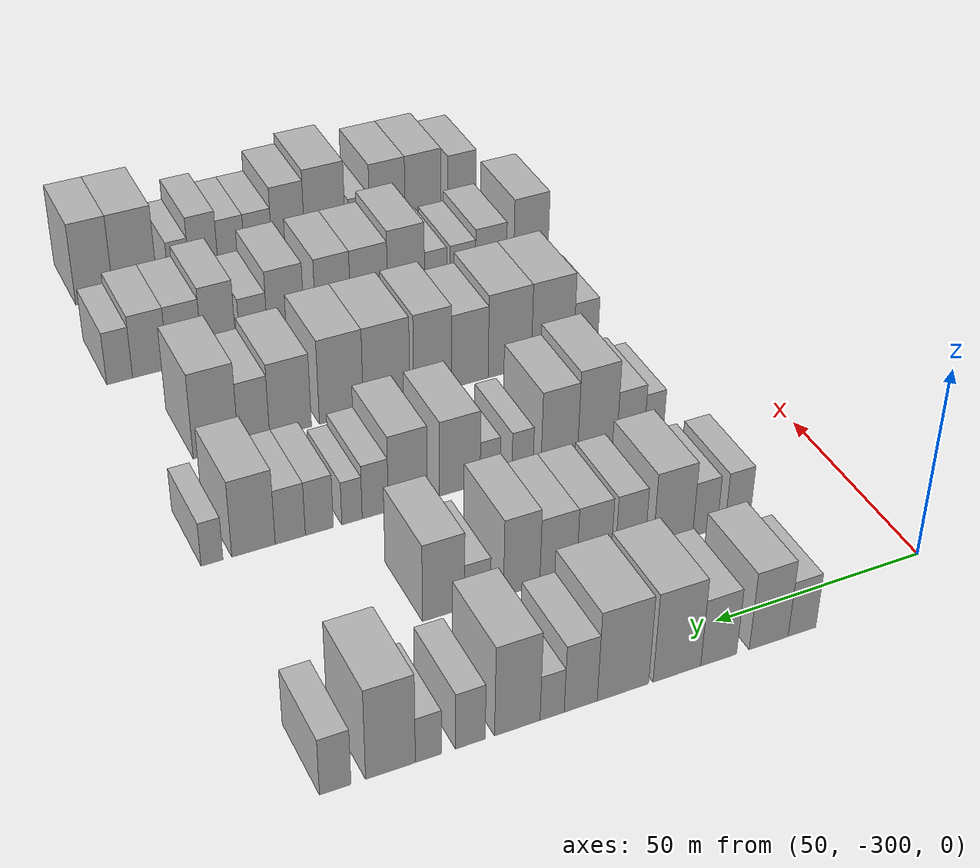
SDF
<sdf version="1.6">
 <world name="default">
  <model name="building_38">
   <static>1</static>
   <pose>50.0000 -264.4770 0 0.000000 0.000000 0.000000</pose>
   <link name="link">
    <pose>0 0 7.50 0 0 0</pose>
    <collision name="collision"><geometry><box><size>20.0000 6.6786 15.0000</size></box></geometry></collision>
    <visual name="visual">
     <cast_shadows>0</cast_shadows>
     <geometry><box><size>20.0000 6.6786 15.0000</size></box></geometry>
     <material>
      <script>
       <uri>model://HANNAS_wall/materials/scripts</uri>
       <uri>model://HANNAS_wall/materials/textures</uri>
       <name>vrc/HANNAS_wall</name>
      </script>
     </material>
    </visual>
   </link>
  </model>
  <model name="building_39">
   <static>1</static>
   <pose>50.0000 -256.5111 0 0.000000 0.000000 0.000000</pose>
   <link name="link">
    <pose>0 0 10.50 0 0 0</pose>
    <collision name="collision"><geometry><box><size>20.0000 9.2534 21.0000</size></box></geometry></collision>
    <visual name="visual">
     <cast_shadows>0</cast_shadows>
     <geometry><box><size>20.0000 9.2534 21.0000</size></box></geometry>
     <material>
      <script>
       <uri>model://HANNAS_wall/materials/scripts</uri>
       <uri>model://HANNAS_wall/materials/textures</uri>
       <name>vrc/HANNAS_wall</name>
      </script>
     </material>
    </visual>
   </link>
  </model>
  <model name="building_40">
   <static>1</static>
   <pose>50.0000 -244.6883 0 0.000000 0.000000 0.000000</pose>
   <link name="link">
    <pose>0 0 9.00 0 0 0</pose>
    <collision name="collision"><geometry><box><size>20.0000 8.3921 18.0000</size></box></geometry></collision>
    <visual name="visual">
     <cast_shadows>0</cast_shadows>
     <geometry><box><size>20.0000 8.3921 18.0000</size></box></geometry>
     <material>
      <script>
       <uri>model://HANNAS_wall/materials/scripts</uri>
       <uri>model://HANNAS_wall/materials/textures</uri>
       <name>vrc/HANNAS_wall</name>
      </script>
     </material>
    </visual>
   </link>
  </model>
  <model name="building_41">
   <static>1</static>
   <pose>50.0000 -234.9987 0 0.000000 0.000000 0.000000</pose>
   <link name="link">
    <pose>0 0 12.00 0 0 0</pose>
    <collision name="collision"><geometry><box><size>20.0000 10.9871 24.0000</size></box></geometry></collision>
    <visual name="visual">
     <cast_shadows>0</cast_shadows>
     <geometry><box><size>20.0000 10.9871 24.0000</size></box></geometry>
     <material>
      <script>
       <uri>model://HANNAS_wall/materials/scripts</uri>
       <uri>model://HANNAS_wall/materials/textures</uri>
       <name>vrc/HANNAS_wall</name>
      </script>
     </material>
    </visual>
   </link>
  </model>
  <model name="building_42">
   <static>1</static>
   <pose>50.0000 -222.6855 0 0.000000 0.000000 0.000000</pose>
   <link name="link">
    <pose>0 0 12.00 0 0 0</pose>
    <collision name="collision"><geometry><box><size>20.0000 11.6394 24.0000</size></box></geometry></collision>
    <visual name="visual">
     <cast_shadows>0</cast_shadows>
     <geometry><box><size>20.0000 11.6394 24.0000</size></box></geometry>
     <material>
      <script>
       <uri>model://HANNAS_wall/materials/scripts</uri>
       <uri>model://HANNAS_wall/materials/textures</uri>
       <name>vrc/HANNAS_wall</name>
      </script>
     </material>
    </visual>
   </link>
  </model>
  <model name="building_43">
   <static>1</static>
   <pose>50.0000 -213.1905 0 0.000000 0.000000 0.000000</pose>
   <link name="link">
    <pose>0 0 9.00 0 0 0</pose>
    <collision name="collision"><geometry><box><size>20.0000 7.3506 18.0000</size></box></geometry></collision>
    <visual name="visual">
     <cast_shadows>0</cast_shadows>
     <geometry><box><size>20.0000 7.3506 18.0000</size></box></geometry>
     <material>
      <script>
       <uri>model://HANNAS_wall/materials/scripts</uri>
       <uri>model://HANNAS_wall/materials/textures</uri>
       <name>vrc/HANNAS_wall</name>
      </script>
     </material>
    </visual>
   </link>
  </model>
  <model name="building_44">
   <static>1</static>
   <pose>50.0000 -206.8471 0 0.000000 0.000000 0.000000</pose>
   <link name="link">
    <pose>0 0 6.00 0 0 0</pose>
    <collision name="collision"><geometry><box><size>20.0000 5.3361 12.0000</size></box></geometry></collision>
    <visual name="visual">
     <cast_shadows>0</cast_shadows>
     <geometry><box><size>20.0000 5.3361 12.0000</size></box></geometry>
     <material>
      <script>
       <uri>model://HANNAS_wall/materials/scripts</uri>
       <uri>model://HANNAS_wall/materials/textures</uri>
       <name>vrc/HANNAS_wall</name>
      </script>
     </material>
    </visual>
   </link>
  </model>
  <model name="building_45">
   <static>1</static>
   <pose>50.0000 -199.2289 0 0.000000 0.000000 0.000000</pose>
   <link name="link">
    <pose>0 0 12.00 0 0 0</pose>
    <collision name="collision"><geometry><box><size>20.0000 9.9003 24.0000</size></box></geometry></collision>
    <visual name="visual">
     <cast_shadows>0</cast_shadows>
     <geometry><box><size>20.0000 9.9003 24.0000</size></box></geometry>
     <material>
      <script>
       <uri>model://HANNAS_wall/materials/scripts</uri>
       <uri>model://HANNAS_wall/materials/textures</uri>
       <name>vrc/HANNAS_wall</name>
      </script>
     </material>
    </visual>
   </link>
  </model>
  <model name="building_46">
   <static>1</static>
   <pose>50.0000 -189.0981 0 0.000000 0.000000 0.000000</pose>
   <link name="link">
    <pose>0 0 7.50 0 0 0</pose>
    <collision name="collision"><geometry><box><size>20.0000 6.3613 15.0000</size></box></geometry></collision>
    <visual name="visual">
     <cast_shadows>0</cast_shadows>
     <geometry><box><size>20.0000 6.3613 15.0000</size></box></geometry>
     <material>
      <script>
       <uri>model://HANNAS_wall/materials/scripts</uri>
       <uri>model://HANNAS_wall/materials/textures</uri>
       <name>vrc/HANNAS_wall</name>
      </script>
     </material>
    </visual>
   </link>
  </model>
  <model name="building_47">
   <static>1</static>
   <pose>50.0000 -180.1679 0 0.000000 0.000000 0.000000</pose>
   <link name="link">
    <pose>0 0 6.00 0 0 0</pose>
    <collision name="collision"><geometry><box><size>20.0000 5.4991 12.0000</size></box></geometry></collision>
    <visual name="visual">
     <cast_shadows>0</cast_shadows>
     <geometry><box><size>20.0000 5.4991 12.0000</size></box></geometry>
     <material>
      <script>
       <uri>model://HANNAS_wall/materials/scripts</uri>
       <uri>model://HANNAS_wall/materials/textures</uri>
       <name>vrc/HANNAS_wall</name>
      </script>
     </material>
    </visual>
   </link>
  </model>
  <model name="building_48">
   <static>1</static>
   <pose>50.0000 -172.2289 0 0.000000 0.000000 0.000000</pose>
   <link name="link">
    <pose>0 0 12.00 0 0 0</pose>
    <collision name="collision"><geometry><box><size>20.0000 10.3790 24.0000</size></box></geometry></collision>
    <visual name="visual">
     <cast_shadows>0</cast_shadows>
     <geometry><box><size>20.0000 10.3790 24.0000</size></box></geometry>
     <material>
      <script>
       <uri>model://HANNAS_wall/materials/scripts</uri>
       <uri>model://HANNAS_wall/materials/textures</uri>
       <name>vrc/HANNAS_wall</name>
      </script>
     </material>
    </visual>
   </link>
  </model>
  <model name="building_49">
   <static>1</static>
   <pose>50.0000 -160.8166 0 0.000000 0.000000 0.000000</pose>
   <link name="link">
    <pose>0 0 7.50 0 0 0</pose>
    <collision name="collision"><geometry><box><size>20.0000 6.4456 15.0000</size></box></geometry></collision>
    <visual name="visual">
     <cast_shadows>0</cast_shadows>
     <geometry><box><size>20.0000 6.4456 15.0000</size></box></geometry>
     <material>
      <script>
       <uri>model://HANNAS_wall/materials/scripts</uri>
       <uri>model://HANNAS_wall/materials/textures</uri>
       <name>vrc/HANNAS_wall</name>
      </script>
     </material>
    </visual>
   </link>
  </model>
  <model name="building_171">
   <static>1</static>
   <pose>85.0000 -269.8474 0 0.000000 0.000000 0.000000</pose>
   <link name="link">
    <pose>0 0 7.50 0 0 0</pose>
    <collision name="collision"><geometry><box><size>20.0000 6.3434 15.0000</size></box></geometry></collision>
    <visual name="visual">
     <cast_shadows>0</cast_shadows>
     <geometry><box><size>20.0000 6.3434 15.0000</size></box></geometry>
     <material>
      <script>
       <uri>model://HANNAS_wall/materials/scripts</uri>
       <uri>model://HANNAS_wall/materials/textures</uri>
       <name>vrc/HANNAS_wall</name>
      </script>
     </material>
    </visual>
   </link>
  </model>
  <model name="building_172">
   <static>1</static>
   <pose>85.0000 -261.5961 0 0.000000 0.000000 0.000000</pose>
   <link name="link">
    <pose>0 0 7.50 0 0 0</pose>
    <collision name="collision"><geometry><box><size>20.0000 6.1592 15.0000</size></box></geometry></collision>
    <visual name="visual">
     <cast_shadows>0</cast_shadows>
     <geometry><box><size>20.0000 6.1592 15.0000</size></box></geometry>
     <material>
      <script>
       <uri>model://HANNAS_wall/materials/scripts</uri>
       <uri>model://HANNAS_wall/materials/textures</uri>
       <name>vrc/HANNAS_wall</name>
      </script>
     </material>
    </visual>
   </link>
  </model>
  <model name="building_173">
   <static>1</static>
   <pose>85.0000 -253.6082 0 0.000000 0.000000 0.000000</pose>
   <link name="link">
    <pose>0 0 10.50 0 0 0</pose>
    <collision name="collision"><geometry><box><size>20.0000 9.8166 21.0000</size></box></geometry></collision>
    <visual name="visual">
     <cast_shadows>0</cast_shadows>
     <geometry><box><size>20.0000 9.8166 21.0000</size></box></geometry>
     <material>
      <script>
       <uri>model://HANNAS_wall/materials/scripts</uri>
       <uri>model://HANNAS_wall/materials/textures</uri>
       <name>vrc/HANNAS_wall</name>
      </script>
     </material>
    </visual>
   </link>
  </model>
  <model name="building_174">
   <static>1</static>
   <pose>85.0000 -243.0721 0 0.000000 0.000000 0.000000</pose>
   <link name="link">
    <pose>0 0 9.00 0 0 0</pose>
    <collision name="collision"><geometry><box><size>20.0000 7.2554 18.0000</size></box></geometry></collision>
    <visual name="visual">
     <cast_shadows>0</cast_shadows>
     <geometry><box><size>20.0000 7.2554 18.0000</size></box></geometry>
     <material>
      <script>
       <uri>model://HANNAS_wall/materials/scripts</uri>
       <uri>model://HANNAS_wall/materials/textures</uri>
       <name>vrc/HANNAS_wall</name>
      </script>
     </material>
    </visual>
   </link>
  </model>
  <model name="building_175">
   <static>1</static>
   <pose>85.0000 -234.3224 0 0.000000 0.000000 0.000000</pose>
   <link name="link">
    <pose>0 0 9.00 0 0 0</pose>
    <collision name="collision"><geometry><box><size>20.0000 8.2440 18.0000</size></box></geometry></collision>
    <visual name="visual">
     <cast_shadows>0</cast_shadows>
     <geometry><box><size>20.0000 8.2440 18.0000</size></box></geometry>
     <material>
      <script>
       <uri>model://HANNAS_wall/materials/scripts</uri>
       <uri>model://HANNAS_wall/materials/textures</uri>
       <name>vrc/HANNAS_wall</name>
      </script>
     </material>
    </visual>
   </link>
  </model>
  <model name="building_176">
   <static>1</static>
   <pose>85.0000 -225.8121 0 0.000000 0.000000 0.000000</pose>
   <link name="link">
    <pose>0 0 9.00 0 0 0</pose>
    <collision name="collision"><geometry><box><size>20.0000 8.7767 18.0000</size></box></geometry></collision>
    <visual name="visual">
     <cast_shadows>0</cast_shadows>
     <geometry><box><size>20.0000 8.7767 18.0000</size></box></geometry>
     <material>
      <script>
       <uri>model://HANNAS_wall/materials/scripts</uri>
       <uri>model://HANNAS_wall/materials/textures</uri>
       <name>vrc/HANNAS_wall</name>
      </script>
     </material>
    </visual>
   </link>
  </model>
  <model name="building_177">
   <static>1</static>
   <pose>85.0000 -217.1564 0 0.000000 0.000000 0.000000</pose>
   <link name="link">
    <pose>0 0 10.50 0 0 0</pose>
    <collision name="collision"><geometry><box><size>20.0000 8.5347 21.0000</size></box></geometry></collision>
    <visual name="visual">
     <cast_shadows>0</cast_shadows>
     <geometry><box><size>20.0000 8.5347 21.0000</size></box></geometry>
     <material>
      <script>
       <uri>model://HANNAS_wall/materials/scripts</uri>
       <uri>model://HANNAS_wall/materials/textures</uri>
       <name>vrc/HANNAS_wall</name>
      </script>
     </material>
    </visual>
   </link>
  </model>
  <model name="building_178">
   <static>1</static>
   <pose>85.0000 -206.8909 0 0.000000 0.000000 0.000000</pose>
   <link name="link">
    <pose>0 0 6.00 0 0 0</pose>
    <collision name="collision"><geometry><box><size>20.0000 5.9962 12.0000</size></box></geometry></collision>
    <visual name="visual">
     <cast_shadows>0</cast_shadows>
     <geometry><box><size>20.0000 5.9962 12.0000</size></box></geometry>
     <material>
      <script>
       <uri>model://HANNAS_wall/materials/scripts</uri>
       <uri>model://HANNAS_wall/materials/textures</uri>
       <name>vrc/HANNAS_wall</name>
      </script>
     </material>
    </visual>
   </link>
  </model>
  <model name="building_179">
   <static>1</static>
   <pose>85.0000 -199.1006 0 0.000000 0.000000 0.000000</pose>
   <link name="link">
    <pose>0 0 10.50 0 0 0</pose>
    <collision name="collision"><geometry><box><size>20.0000 9.5846 21.0000</size></box></geometry></collision>
    <visual name="visual">
     <cast_shadows>0</cast_shadows>
     <geometry><box><size>20.0000 9.5846 21.0000</size></box></geometry>
     <material>
      <script>
       <uri>model://HANNAS_wall/materials/scripts</uri>
       <uri>model://HANNAS_wall/materials/textures</uri>
       <name>vrc/HANNAS_wall</name>
      </script>
     </material>
    </visual>
   </link>
  </model>
  <model name="building_300">
   <static>1</static>
   <pose>120.0000 -268.2463 0 0.000000 0.000000 0.000000</pose>
   <link name="link">
    <pose>0 0 6.00 0 0 0</pose>
    <collision name="collision"><geometry><box><size>20.0000 5.0857 12.0000</size></box></geometry></collision>
    <visual name="visual">
     <cast_shadows>0</cast_shadows>
     <geometry><box><size>20.0000 5.0857 12.0000</size></box></geometry>
     <material>
      <script>
       <uri>model://HANNAS_wall/materials/scripts</uri>
       <uri>model://HANNAS_wall/materials/textures</uri>
       <name>vrc/HANNAS_wall</name>
      </script>
     </material>
    </visual>
   </link>
  </model>
  <model name="building_301">
   <static>1</static>
   <pose>120.0000 -262.1021 0 0.000000 0.000000 0.000000</pose>
   <link name="link">
    <pose>0 0 7.50 0 0 0</pose>
    <collision name="collision"><geometry><box><size>20.0000 7.2027 15.0000</size></box></geometry></collision>
    <visual name="visual">
     <cast_shadows>0</cast_shadows>
     <geometry><box><size>20.0000 7.2027 15.0000</size></box></geometry>
     <material>
      <script>
       <uri>model://HANNAS_wall/materials/scripts</uri>
       <uri>model://HANNAS_wall/materials/textures</uri>
       <name>vrc/HANNAS_wall</name>
      </script>
     </material>
    </visual>
   </link>
  </model>
  <model name="building_302">
   <static>1</static>
   <pose>120.0000 -253.4318 0 0.000000 0.000000 0.000000</pose>
   <link name="link">
    <pose>0 0 12.00 0 0 0</pose>
    <collision name="collision"><geometry><box><size>20.0000 10.1380 24.0000</size></box></geometry></collision>
    <visual name="visual">
     <cast_shadows>0</cast_shadows>
     <geometry><box><size>20.0000 10.1380 24.0000</size></box></geometry>
     <material>
      <script>
       <uri>model://HANNAS_wall/materials/scripts</uri>
       <uri>model://HANNAS_wall/materials/textures</uri>
       <name>vrc/HANNAS_wall</name>
      </script>
     </material>
    </visual>
   </link>
  </model>
  <model name="building_303">
   <static>1</static>
   <pose>120.0000 -243.7081 0 0.000000 0.000000 0.000000</pose>
   <link name="link">
    <pose>0 0 10.50 0 0 0</pose>
    <collision name="collision"><geometry><box><size>20.0000 9.3093 21.0000</size></box></geometry></collision>
    <visual name="visual">
     <cast_shadows>0</cast_shadows>
     <geometry><box><size>20.0000 9.3093 21.0000</size></box></geometry>
     <material>
      <script>
       <uri>model://HANNAS_wall/materials/scripts</uri>
       <uri>model://HANNAS_wall/materials/textures</uri>
       <name>vrc/HANNAS_wall</name>
      </script>
     </material>
    </visual>
   </link>
  </model>
  <model name="building_304">
   <static>1</static>
   <pose>120.0000 -234.3869 0 0.000000 0.000000 0.000000</pose>
   <link name="link">
    <pose>0 0 6.00 0 0 0</pose>
    <collision name="collision"><geometry><box><size>20.0000 5.3332 12.0000</size></box></geometry></collision>
    <visual name="visual">
     <cast_shadows>0</cast_shadows>
     <geometry><box><size>20.0000 5.3332 12.0000</size></box></geometry>
     <material>
      <script>
       <uri>model://HANNAS_wall/materials/scripts</uri>
       <uri>model://HANNAS_wall/materials/textures</uri>
       <name>vrc/HANNAS_wall</name>
      </script>
     </material>
    </visual>
   </link>
  </model>
  <model name="building_305">
   <static>1</static>
   <pose>120.0000 -226.2571 0 0.000000 0.000000 0.000000</pose>
   <link name="link">
    <pose>0 0 6.00 0 0 0</pose>
    <collision name="collision"><geometry><box><size>20.0000 4.9263 12.0000</size></box></geometry></collision>
    <visual name="visual">
     <cast_shadows>0</cast_shadows>
     <geometry><box><size>20.0000 4.9263 12.0000</size></box></geometry>
     <material>
      <script>
       <uri>model://HANNAS_wall/materials/scripts</uri>
       <uri>model://HANNAS_wall/materials/textures</uri>
       <name>vrc/HANNAS_wall</name>
      </script>
     </material>
    </visual>
   </link>
  </model>
  <model name="building_306">
   <static>1</static>
   <pose>120.0000 -218.8204 0 0.000000 0.000000 0.000000</pose>
   <link name="link">
    <pose>0 0 10.50 0 0 0</pose>
    <collision name="collision"><geometry><box><size>20.0000 9.9471 21.0000</size></box></geometry></collision>
    <visual name="visual">
     <cast_shadows>0</cast_shadows>
     <geometry><box><size>20.0000 9.9471 21.0000</size></box></geometry>
     <material>
      <script>
       <uri>model://HANNAS_wall/materials/scripts</uri>
       <uri>model://HANNAS_wall/materials/textures</uri>
       <name>vrc/HANNAS_wall</name>
      </script>
     </material>
    </visual>
   </link>
  </model>
  <model name="building_307">
   <static>1</static>
   <pose>120.0000 -206.1508 0 0.000000 0.000000 0.000000</pose>
   <link name="link">
    <pose>0 0 10.50 0 0 0</pose>
    <collision name="collision"><geometry><box><size>20.0000 9.3922 21.0000</size></box></geometry></collision>
    <visual name="visual">
     <cast_shadows>0</cast_shadows>
     <geometry><box><size>20.0000 9.3922 21.0000</size></box></geometry>
     <material>
      <script>
       <uri>model://HANNAS_wall/materials/scripts</uri>
       <uri>model://HANNAS_wall/materials/textures</uri>
       <name>vrc/HANNAS_wall</name>
      </script>
     </material>
    </visual>
   </link>
  </model>
  <model name="building_308">
   <static>1</static>
   <pose>120.0000 -198.3189 0 0.000000 0.000000 0.000000</pose>
   <link name="link">
    <pose>0 0 7.50 0 0 0</pose>
    <collision name="collision"><geometry><box><size>20.0000 6.2715 15.0000</size></box></geometry></collision>
    <visual name="visual">
     <cast_shadows>0</cast_shadows>
     <geometry><box><size>20.0000 6.2715 15.0000</size></box></geometry>
     <material>
      <script>
       <uri>model://HANNAS_wall/materials/scripts</uri>
       <uri>model://HANNAS_wall/materials/textures</uri>
       <name>vrc/HANNAS_wall</name>
      </script>
     </material>
    </visual>
   </link>
  </model>
  <model name="building_309">
   <static>1</static>
   <pose>120.0000 -192.7763 0 0.000000 0.000000 0.000000</pose>
   <link name="link">
    <pose>0 0 6.00 0 0 0</pose>
    <collision name="collision"><geometry><box><size>20.0000 4.8138 12.0000</size></box></geometry></collision>
    <visual name="visual">
     <cast_shadows>0</cast_shadows>
     <geometry><box><size>20.0000 4.8138 12.0000</size></box></geometry>
     <material>
      <script>
       <uri>model://HANNAS_wall/materials/scripts</uri>
       <uri>model://HANNAS_wall/materials/textures</uri>
       <name>vrc/HANNAS_wall</name>
      </script>
     </material>
    </visual>
   </link>
  </model>
  <model name="building_310">
   <static>1</static>
   <pose>120.0000 -185.0852 0 0.000000 0.000000 0.000000</pose>
   <link name="link">
    <pose>0 0 7.50 0 0 0</pose>
    <collision name="collision"><geometry><box><size>20.0000 6.5684 15.0000</size></box></geometry></collision>
    <visual name="visual">
     <cast_shadows>0</cast_shadows>
     <geometry><box><size>20.0000 6.5684 15.0000</size></box></geometry>
     <material>
      <script>
       <uri>model://HANNAS_wall/materials/scripts</uri>
       <uri>model://HANNAS_wall/materials/textures</uri>
       <name>vrc/HANNAS_wall</name>
      </script>
     </material>
    </visual>
   </link>
  </model>
  <model name="building_311">
   <static>1</static>
   <pose>120.0000 -178.3073 0 0.000000 0.000000 0.000000</pose>
   <link name="link">
    <pose>0 0 7.50 0 0 0</pose>
    <collision name="collision"><geometry><box><size>20.0000 6.9875 15.0000</size></box></geometry></collision>
    <visual name="visual">
     <cast_shadows>0</cast_shadows>
     <geometry><box><size>20.0000 6.9875 15.0000</size></box></geometry>
     <material>
      <script>
       <uri>model://HANNAS_wall/materials/scripts</uri>
       <uri>model://HANNAS_wall/materials/textures</uri>
       <name>vrc/HANNAS_wall</name>
      </script>
     </material>
    </visual>
   </link>
  </model>
  <model name="building_312">
   <static>1</static>
   <pose>120.0000 -169.8293 0 0.000000 0.000000 0.000000</pose>
   <link name="link">
    <pose>0 0 10.50 0 0 0</pose>
    <collision name="collision"><geometry><box><size>20.0000 9.9685 21.0000</size></box></geometry></collision>
    <visual name="visual">
     <cast_shadows>0</cast_shadows>
     <geometry><box><size>20.0000 9.9685 21.0000</size></box></geometry>
     <material>
      <script>
       <uri>model://HANNAS_wall/materials/scripts</uri>
       <uri>model://HANNAS_wall/materials/textures</uri>
       <name>vrc/HANNAS_wall</name>
      </script>
     </material>
    </visual>
   </link>
  </model>
  <model name="building_313">
   <static>1</static>
   <pose>120.0000 -160.3650 0 0.000000 0.000000 0.000000</pose>
   <link name="link">
    <pose>0 0 6.00 0 0 0</pose>
    <collision name="collision"><geometry><box><size>20.0000 4.9602 12.0000</size></box></geometry></collision>
    <visual name="visual">
     <cast_shadows>0</cast_shadows>
     <geometry><box><size>20.0000 4.9602 12.0000</size></box></geometry>
     <material>
      <script>
       <uri>model://HANNAS_wall/materials/scripts</uri>
       <uri>model://HANNAS_wall/materials/textures</uri>
       <name>vrc/HANNAS_wall</name>
      </script>
     </material>
    </visual>
   </link>
  </model>
  <model name="building_432">
   <static>1</static>
   <pose>155.0000 -268.5036 0 0.000000 0.000000 0.000000</pose>
   <link name="link">
    <pose>0 0 7.50 0 0 0</pose>
    <collision name="collision"><geometry><box><size>20.0000 6.5609 15.0000</size></box></geometry></collision>
    <visual name="visual">
     <cast_shadows>0</cast_shadows>
     <geometry><box><size>20.0000 6.5609 15.0000</size></box></geometry>
     <material>
      <script>
       <uri>model://HANNAS_wall/materials/scripts</uri>
       <uri>model://HANNAS_wall/materials/textures</uri>
       <name>vrc/HANNAS_wall</name>
      </script>
     </material>
    </visual>
   </link>
  </model>
  <model name="building_433">
   <static>1</static>
   <pose>155.0000 -259.4865 0 0.000000 0.000000 0.000000</pose>
   <link name="link">
    <pose>0 0 12.00 0 0 0</pose>
    <collision name="collision"><geometry><box><size>20.0000 11.4734 24.0000</size></box></geometry></collision>
    <visual name="visual">
     <cast_shadows>0</cast_shadows>
     <geometry><box><size>20.0000 11.4734 24.0000</size></box></geometry>
     <material>
      <script>
       <uri>model://HANNAS_wall/materials/scripts</uri>
       <uri>model://HANNAS_wall/materials/textures</uri>
       <name>vrc/HANNAS_wall</name>
      </script>
     </material>
    </visual>
   </link>
  </model>
  <model name="building_434">
   <static>1</static>
   <pose>155.0000 -247.9953 0 0.000000 0.000000 0.000000</pose>
   <link name="link">
    <pose>0 0 12.00 0 0 0</pose>
    <collision name="collision"><geometry><box><size>20.0000 11.5090 24.0000</size></box></geometry></collision>
    <visual name="visual">
     <cast_shadows>0</cast_shadows>
     <geometry><box><size>20.0000 11.5090 24.0000</size></box></geometry>
     <material>
      <script>
       <uri>model://HANNAS_wall/materials/scripts</uri>
       <uri>model://HANNAS_wall/materials/textures</uri>
       <name>vrc/HANNAS_wall</name>
      </script>
     </material>
    </visual>
   </link>
  </model>
  <model name="building_435">
   <static>1</static>
   <pose>155.0000 -237.4347 0 0.000000 0.000000 0.000000</pose>
   <link name="link">
    <pose>0 0 10.50 0 0 0</pose>
    <collision name="collision"><geometry><box><size>20.0000 9.6121 21.0000</size></box></geometry></collision>
    <visual name="visual">
     <cast_shadows>0</cast_shadows>
     <geometry><box><size>20.0000 9.6121 21.0000</size></box></geometry>
     <material>
      <script>
       <uri>model://HANNAS_wall/materials/scripts</uri>
       <uri>model://HANNAS_wall/materials/textures</uri>
       <name>vrc/HANNAS_wall</name>
      </script>
     </material>
    </visual>
   </link>
  </model>
  <model name="building_436">
   <static>1</static>
   <pose>155.0000 -227.7088 0 0.000000 0.000000 0.000000</pose>
   <link name="link">
    <pose>0 0 12.00 0 0 0</pose>
    <collision name="collision"><geometry><box><size>20.0000 9.8396 24.0000</size></box></geometry></collision>
    <visual name="visual">
     <cast_shadows>0</cast_shadows>
     <geometry><box><size>20.0000 9.8396 24.0000</size></box></geometry>
     <material>
      <script>
       <uri>model://HANNAS_wall/materials/scripts</uri>
       <uri>model://HANNAS_wall/materials/textures</uri>
       <name>vrc/HANNAS_wall</name>
      </script>
     </material>
    </visual>
   </link>
  </model>
  <model name="building_437">
   <static>1</static>
   <pose>155.0000 -215.8614 0 0.000000 0.000000 0.000000</pose>
   <link name="link">
    <pose>0 0 12.00 0 0 0</pose>
    <collision name="collision"><geometry><box><size>20.0000 11.8553 24.0000</size></box></geometry></collision>
    <visual name="visual">
     <cast_shadows>0</cast_shadows>
     <geometry><box><size>20.0000 11.8553 24.0000</size></box></geometry>
     <material>
      <script>
       <uri>model://HANNAS_wall/materials/scripts</uri>
       <uri>model://HANNAS_wall/materials/textures</uri>
       <name>vrc/HANNAS_wall</name>
      </script>
     </material>
    </visual>
   </link>
  </model>
  <model name="building_438">
   <static>1</static>
   <pose>155.0000 -204.3925 0 0.000000 0.000000 0.000000</pose>
   <link name="link">
    <pose>0 0 12.00 0 0 0</pose>
    <collision name="collision"><geometry><box><size>20.0000 11.0824 24.0000</size></box></geometry></collision>
    <visual name="visual">
     <cast_shadows>0</cast_shadows>
     <geometry><box><size>20.0000 11.0824 24.0000</size></box></geometry>
     <material>
      <script>
       <uri>model://HANNAS_wall/materials/scripts</uri>
       <uri>model://HANNAS_wall/materials/textures</uri>
       <name>vrc/HANNAS_wall</name>
      </script>
     </material>
    </visual>
   </link>
  </model>
  <model name="building_439">
   <static>1</static>
   <pose>155.0000 -191.6868 0 0.000000 0.000000 0.000000</pose>
   <link name="link">
    <pose>0 0 10.50 0 0 0</pose>
    <collision name="collision"><geometry><box><size>20.0000 10.3290 21.0000</size></box></geometry></collision>
    <visual name="visual">
     <cast_shadows>0</cast_shadows>
     <geometry><box><size>20.0000 10.3290 21.0000</size></box></geometry>
     <material>
      <script>
       <uri>model://HANNAS_wall/materials/scripts</uri>
       <uri>model://HANNAS_wall/materials/textures</uri>
       <name>vrc/HANNAS_wall</name>
      </script>
     </material>
    </visual>
   </link>
  </model>
  <model name="building_440">
   <static>1</static>
   <pose>155.0000 -182.7000 0 0.000000 0.000000 0.000000</pose>
   <link name="link">
    <pose>0 0 9.00 0 0 0</pose>
    <collision name="collision"><geometry><box><size>20.0000 7.6446 18.0000</size></box></geometry></collision>
    <visual name="visual">
     <cast_shadows>0</cast_shadows>
     <geometry><box><size>20.0000 7.6446 18.0000</size></box></geometry>
     <material>
      <script>
       <uri>model://HANNAS_wall/materials/scripts</uri>
       <uri>model://HANNAS_wall/materials/textures</uri>
       <name>vrc/HANNAS_wall</name>
      </script>
     </material>
    </visual>
   </link>
  </model>
  <model name="building_441">
   <static>1</static>
   <pose>155.0000 -173.4201 0 0.000000 0.000000 0.000000</pose>
   <link name="link">
    <pose>0 0 12.00 0 0 0</pose>
    <collision name="collision"><geometry><box><size>20.0000 10.9152 24.0000</size></box></geometry></collision>
    <visual name="visual">
     <cast_shadows>0</cast_shadows>
     <geometry><box><size>20.0000 10.9152 24.0000</size></box></geometry>
     <material>
      <script>
       <uri>model://HANNAS_wall/materials/scripts</uri>
       <uri>model://HANNAS_wall/materials/textures</uri>
       <name>vrc/HANNAS_wall</name>
      </script>
     </material>
    </visual>
   </link>
  </model>
  <model name="building_561">
   <static>1</static>
   <pose>190.0000 -270.6740 0 0.000000 0.000000 0.000000</pose>
   <link name="link">
    <pose>0 0 12.00 0 0 0</pose>
    <collision name="collision"><geometry><box><size>20.0000 9.7793 24.0000</size></box></geometry></collision>
    <visual name="visual">
     <cast_shadows>0</cast_shadows>
     <geometry><box><size>20.0000 9.7793 24.0000</size></box></geometry>
     <material>
      <script>
       <uri>model://HANNAS_wall/materials/scripts</uri>
       <uri>model://HANNAS_wall/materials/textures</uri>
       <name>vrc/HANNAS_wall</name>
      </script>
     </material>
    </visual>
   </link>
  </model>
  <model name="building_562">
   <static>1</static>
   <pose>190.0000 -259.4428 0 0.000000 0.000000 0.000000</pose>
   <link name="link">
    <pose>0 0 9.00 0 0 0</pose>
    <collision name="collision"><geometry><box><size>20.0000 8.6832 18.0000</size></box></geometry></collision>
    <visual name="visual">
     <cast_shadows>0</cast_shadows>
     <geometry><box><size>20.0000 8.6832 18.0000</size></box></geometry>
     <material>
      <script>
       <uri>model://HANNAS_wall/materials/scripts</uri>
       <uri>model://HANNAS_wall/materials/textures</uri>
       <name>vrc/HANNAS_wall</name>
      </script>
     </material>
    </visual>
   </link>
  </model>
  <model name="building_563">
   <static>1</static>
   <pose>190.0000 -251.6100 0 0.000000 0.000000 0.000000</pose>
   <link name="link">
    <pose>0 0 7.50 0 0 0</pose>
    <collision name="collision"><geometry><box><size>20.0000 6.9825 15.0000</size></box></geometry></collision>
    <visual name="visual">
     <cast_shadows>0</cast_shadows>
     <geometry><box><size>20.0000 6.9825 15.0000</size></box></geometry>
     <material>
      <script>
       <uri>model://HANNAS_wall/materials/scripts</uri>
       <uri>model://HANNAS_wall/materials/textures</uri>
       <name>vrc/HANNAS_wall</name>
      </script>
     </material>
    </visual>
   </link>
  </model>
  <model name="building_564">
   <static>1</static>
   <pose>190.0000 -244.0811 0 0.000000 0.000000 0.000000</pose>
   <link name="link">
    <pose>0 0 7.50 0 0 0</pose>
    <collision name="collision"><geometry><box><size>20.0000 6.0752 15.0000</size></box></geometry></collision>
    <visual name="visual">
     <cast_shadows>0</cast_shadows>
     <geometry><box><size>20.0000 6.0752 15.0000</size></box></geometry>
     <material>
      <script>
       <uri>model://HANNAS_wall/materials/scripts</uri>
       <uri>model://HANNAS_wall/materials/textures</uri>
       <name>vrc/HANNAS_wall</name>
      </script>
     </material>
    </visual>
   </link>
  </model>
  <model name="building_565">
   <static>1</static>
   <pose>190.0000 -236.0250 0 0.000000 0.000000 0.000000</pose>
   <link name="link">
    <pose>0 0 12.00 0 0 0</pose>
    <collision name="collision"><geometry><box><size>20.0000 10.0370 24.0000</size></box></geometry></collision>
    <visual name="visual">
     <cast_shadows>0</cast_shadows>
     <geometry><box><size>20.0000 10.0370 24.0000</size></box></geometry>
     <material>
      <script>
       <uri>model://HANNAS_wall/materials/scripts</uri>
       <uri>model://HANNAS_wall/materials/textures</uri>
       <name>vrc/HANNAS_wall</name>
      </script>
     </material>
    </visual>
   </link>
  </model>
  <model name="building_566">
   <static>1</static>
   <pose>190.0000 -225.9963 0 0.000000 0.000000 0.000000</pose>
   <link name="link">
    <pose>0 0 10.50 0 0 0</pose>
    <collision name="collision"><geometry><box><size>20.0000 10.0204 21.0000</size></box></geometry></collision>
    <visual name="visual">
     <cast_shadows>0</cast_shadows>
     <geometry><box><size>20.0000 10.0204 21.0000</size></box></geometry>
     <material>
      <script>
       <uri>model://HANNAS_wall/materials/scripts</uri>
       <uri>model://HANNAS_wall/materials/textures</uri>
       <name>vrc/HANNAS_wall</name>
      </script>
     </material>
    </visual>
   </link>
  </model>
  <model name="building_567">
   <static>1</static>
   <pose>190.0000 -216.3388 0 0.000000 0.000000 0.000000</pose>
   <link name="link">
    <pose>0 0 10.50 0 0 0</pose>
    <collision name="collision"><geometry><box><size>20.0000 9.2947 21.0000</size></box></geometry></collision>
    <visual name="visual">
     <cast_shadows>0</cast_shadows>
     <geometry><box><size>20.0000 9.2947 21.0000</size></box></geometry>
     <material>
      <script>
       <uri>model://HANNAS_wall/materials/scripts</uri>
       <uri>model://HANNAS_wall/materials/textures</uri>
       <name>vrc/HANNAS_wall</name>
      </script>
     </material>
    </visual>
   </link>
  </model>
  <model name="building_568">
   <static>1</static>
   <pose>190.0000 -203.8784 0 0.000000 0.000000 0.000000</pose>
   <link name="link">
    <pose>0 0 10.50 0 0 0</pose>
    <collision name="collision"><geometry><box><size>20.0000 9.6261 21.0000</size></box></geometry></collision>
    <visual name="visual">
     <cast_shadows>0</cast_shadows>
     <geometry><box><size>20.0000 9.6261 21.0000</size></box></geometry>
     <material>
      <script>
       <uri>model://HANNAS_wall/materials/scripts</uri>
       <uri>model://HANNAS_wall/materials/textures</uri>
       <name>vrc/HANNAS_wall</name>
      </script>
     </material>
    </visual>
   </link>
  </model>
  <model name="building_569">
   <static>1</static>
   <pose>190.0000 -195.4571 0 0.000000 0.000000 0.000000</pose>
   <link name="link">
    <pose>0 0 7.50 0 0 0</pose>
    <collision name="collision"><geometry><box><size>20.0000 7.2165 15.0000</size></box></geometry></collision>
    <visual name="visual">
     <cast_shadows>0</cast_shadows>
     <geometry><box><size>20.0000 7.2165 15.0000</size></box></geometry>
     <material>
      <script>
       <uri>model://HANNAS_wall/materials/scripts</uri>
       <uri>model://HANNAS_wall/materials/textures</uri>
       <name>vrc/HANNAS_wall</name>
      </script>
     </material>
    </visual>
   </link>
  </model>
  <model name="building_570">
   <static>1</static>
   <pose>190.0000 -186.4828 0 0.000000 0.000000 0.000000</pose>
   <link name="link">
    <pose>0 0 10.50 0 0 0</pose>
    <collision name="collision"><geometry><box><size>20.0000 8.7321 21.0000</size></box></geometry></collision>
    <visual name="visual">
     <cast_shadows>0</cast_shadows>
     <geometry><box><size>20.0000 8.7321 21.0000</size></box></geometry>
     <material>
      <script>
       <uri>model://HANNAS_wall/materials/scripts</uri>
       <uri>model://HANNAS_wall/materials/textures</uri>
       <name>vrc/HANNAS_wall</name>
      </script>
     </material>
    </visual>
   </link>
  </model>
  <model name="building_571">
   <static>1</static>
   <pose>190.0000 -177.7274 0 0.000000 0.000000 0.000000</pose>
   <link name="link">
    <pose>0 0 9.00 0 0 0</pose>
    <collision name="collision"><geometry><box><size>20.0000 8.7788 18.0000</size></box></geometry></collision>
    <visual name="visual">
     <cast_shadows>0</cast_shadows>
     <geometry><box><size>20.0000 8.7788 18.0000</size></box></geometry>
     <material>
      <script>
       <uri>model://HANNAS_wall/materials/scripts</uri>
       <uri>model://HANNAS_wall/materials/textures</uri>
       <name>vrc/HANNAS_wall</name>
      </script>
     </material>
    </visual>
   </link>
  </model>
  <model name="building_572">
   <static>1</static>
   <pose>190.0000 -168.9260 0 0.000000 0.000000 0.000000</pose>
   <link name="link">
    <pose>0 0 9.00 0 0 0</pose>
    <collision name="collision"><geometry><box><size>20.0000 8.8239 18.0000</size></box></geometry></collision>
    <visual name="visual">
     <cast_shadows>0</cast_shadows>
     <geometry><box><size>20.0000 8.8239 18.0000</size></box></geometry>
     <material>
      <script>
       <uri>model://HANNAS_wall/materials/scripts</uri>
       <uri>model://HANNAS_wall/materials/textures</uri>
       <name>vrc/HANNAS_wall</name>
      </script>
     </material>
    </visual>
   </link>
  </model>
  <model name="building_573">
   <static>1</static>
   <pose>190.0000 -161.2932 0 0.000000 0.000000 0.000000</pose>
   <link name="link">
    <pose>0 0 7.50 0 0 0</pose>
    <collision name="collision"><geometry><box><size>20.0000 6.4417 15.0000</size></box></geometry></collision>
    <visual name="visual">
     <cast_shadows>0</cast_shadows>
     <geometry><box><size>20.0000 6.4417 15.0000</size></box></geometry>
     <material>
      <script>
       <uri>model://HANNAS_wall/materials/scripts</uri>
       <uri>model://HANNAS_wall/materials/textures</uri>
       <name>vrc/HANNAS_wall</name>
      </script>
     </material>
    </visual>
   </link>
  </model>
  <model name="building_688">
   <static>1</static>
   <pose>225.0000 -267.3496 0 0.000000 0.000000 0.000000</pose>
   <link name="link">
    <pose>0 0 9.00 0 0 0</pose>
    <collision name="collision"><geometry><box><size>20.0000 8.3152 18.0000</size></box></geometry></collision>
    <visual name="visual">
     <cast_shadows>0</cast_shadows>
     <geometry><box><size>20.0000 8.3152 18.0000</size></box></geometry>
     <material>
      <script>
       <uri>model://HANNAS_wall/materials/scripts</uri>
       <uri>model://HANNAS_wall/materials/textures</uri>
       <name>vrc/HANNAS_wall</name>
      </script>
     </material>
    </visual>
   </link>
  </model>
  <model name="building_689">
   <static>1</static>
   <pose>225.0000 -255.9935 0 0.000000 0.000000 0.000000</pose>
   <link name="link">
    <pose>0 0 10.50 0 0 0</pose>
    <collision name="collision"><geometry><box><size>20.0000 10.3971 21.0000</size></box></geometry></collision>
    <visual name="visual">
     <cast_shadows>0</cast_shadows>
     <geometry><box><size>20.0000 10.3971 21.0000</size></box></geometry>
     <material>
      <script>
       <uri>model://HANNAS_wall/materials/scripts</uri>
       <uri>model://HANNAS_wall/materials/textures</uri>
       <name>vrc/HANNAS_wall</name>
      </script>
     </material>
    </visual>
   </link>
  </model>
  <model name="building_690">
   <static>1</static>
   <pose>225.0000 -245.7145 0 0.000000 0.000000 0.000000</pose>
   <link name="link">
    <pose>0 0 10.50 0 0 0</pose>
    <collision name="collision"><geometry><box><size>20.0000 10.1608 21.0000</size></box></geometry></collision>
    <visual name="visual">
     <cast_shadows>0</cast_shadows>
     <geometry><box><size>20.0000 10.1608 21.0000</size></box></geometry>
     <material>
      <script>
       <uri>model://HANNAS_wall/materials/scripts</uri>
       <uri>model://HANNAS_wall/materials/textures</uri>
       <name>vrc/HANNAS_wall</name>
      </script>
     </material>
    </visual>
   </link>
  </model>
  <model name="building_691">
   <static>1</static>
   <pose>225.0000 -237.6572 0 0.000000 0.000000 0.000000</pose>
   <link name="link">
    <pose>0 0 6.00 0 0 0</pose>
    <collision name="collision"><geometry><box><size>20.0000 5.9538 12.0000</size></box></geometry></collision>
    <visual name="visual">
     <cast_shadows>0</cast_shadows>
     <geometry><box><size>20.0000 5.9538 12.0000</size></box></geometry>
     <material>
      <script>
       <uri>model://HANNAS_wall/materials/scripts</uri>
       <uri>model://HANNAS_wall/materials/textures</uri>
       <name>vrc/HANNAS_wall</name>
      </script>
     </material>
    </visual>
   </link>
  </model>
  <model name="building_692">
   <static>1</static>
   <pose>225.0000 -227.9925 0 0.000000 0.000000 0.000000</pose>
   <link name="link">
    <pose>0 0 12.00 0 0 0</pose>
    <collision name="collision"><geometry><box><size>20.0000 11.3756 24.0000</size></box></geometry></collision>
    <visual name="visual">
     <cast_shadows>0</cast_shadows>
     <geometry><box><size>20.0000 11.3756 24.0000</size></box></geometry>
     <material>
      <script>
       <uri>model://HANNAS_wall/materials/scripts</uri>
       <uri>model://HANNAS_wall/materials/textures</uri>
       <name>vrc/HANNAS_wall</name>
      </script>
     </material>
    </visual>
   </link>
  </model>
  <model name="building_693">
   <static>1</static>
   <pose>225.0000 -217.7562 0 0.000000 0.000000 0.000000</pose>
   <link name="link">
    <pose>0 0 10.50 0 0 0</pose>
    <collision name="collision"><geometry><box><size>20.0000 9.0969 21.0000</size></box></geometry></collision>
    <visual name="visual">
     <cast_shadows>0</cast_shadows>
     <geometry><box><size>20.0000 9.0969 21.0000</size></box></geometry>
     <material>
      <script>
       <uri>model://HANNAS_wall/materials/scripts</uri>
       <uri>model://HANNAS_wall/materials/textures</uri>
       <name>vrc/HANNAS_wall</name>
      </script>
     </material>
    </visual>
   </link>
  </model>
  <model name="building_694">
   <static>1</static>
   <pose>225.0000 -209.4613 0 0.000000 0.000000 0.000000</pose>
   <link name="link">
    <pose>0 0 7.50 0 0 0</pose>
    <collision name="collision"><geometry><box><size>20.0000 7.4930 15.0000</size></box></geometry></collision>
    <visual name="visual">
     <cast_shadows>0</cast_shadows>
     <geometry><box><size>20.0000 7.4930 15.0000</size></box></geometry>
     <material>
      <script>
       <uri>model://HANNAS_wall/materials/scripts</uri>
       <uri>model://HANNAS_wall/materials/textures</uri>
       <name>vrc/HANNAS_wall</name>
      </script>
     </material>
    </visual>
   </link>
  </model>
  <model name="building_695">
   <static>1</static>
   <pose>225.0000 -202.0644 0 0.000000 0.000000 0.000000</pose>
   <link name="link">
    <pose>0 0 7.50 0 0 0</pose>
    <collision name="collision"><geometry><box><size>20.0000 7.3008 15.0000</size></box></geometry></collision>
    <visual name="visual">
     <cast_shadows>0</cast_shadows>
     <geometry><box><size>20.0000 7.3008 15.0000</size></box></geometry>
     <material>
      <script>
       <uri>model://HANNAS_wall/materials/scripts</uri>
       <uri>model://HANNAS_wall/materials/textures</uri>
       <name>vrc/HANNAS_wall</name>
      </script>
     </material>
    </visual>
   </link>
  </model>
  <model name="building_696">
   <static>1</static>
   <pose>225.0000 -194.5176 0 0.000000 0.000000 0.000000</pose>
   <link name="link">
    <pose>0 0 9.00 0 0 0</pose>
    <collision name="collision"><geometry><box><size>20.0000 7.7928 18.0000</size></box></geometry></collision>
    <visual name="visual">
     <cast_shadows>0</cast_shadows>
     <geometry><box><size>20.0000 7.7928 18.0000</size></box></geometry>
     <material>
      <script>
       <uri>model://HANNAS_wall/materials/scripts</uri>
       <uri>model://HANNAS_wall/materials/textures</uri>
       <name>vrc/HANNAS_wall</name>
      </script>
     </material>
    </visual>
   </link>
  </model>
  <model name="building_697">
   <static>1</static>
   <pose>225.0000 -187.7950 0 0.000000 0.000000 0.000000</pose>
   <link name="link">
    <pose>0 0 6.00 0 0 0</pose>
    <collision name="collision"><geometry><box><size>20.0000 5.6524 12.0000</size></box></geometry></collision>
    <visual name="visual">
     <cast_shadows>0</cast_shadows>
     <geometry><box><size>20.0000 5.6524 12.0000</size></box></geometry>
     <material>
      <script>
       <uri>model://HANNAS_wall/materials/scripts</uri>
       <uri>model://HANNAS_wall/materials/textures</uri>
       <name>vrc/HANNAS_wall</name>
      </script>
     </material>
    </visual>
   </link>
  </model>
  <model name="building_698">
   <static>1</static>
   <pose>225.0000 -176.1740 0 0.000000 0.000000 0.000000</pose>
   <link name="link">
    <pose>0 0 12.00 0 0 0</pose>
    <collision name="collision"><geometry><box><size>20.0000 11.5897 24.0000</size></box></geometry></collision>
    <visual name="visual">
     <cast_shadows>0</cast_shadows>
     <geometry><box><size>20.0000 11.5897 24.0000</size></box></geometry>
     <material>
      <script>
       <uri>model://HANNAS_wall/materials/scripts</uri>
       <uri>model://HANNAS_wall/materials/textures</uri>
       <name>vrc/HANNAS_wall</name>
      </script>
     </material>
    </visual>
   </link>
  </model>
  <model name="building_699">
   <static>1</static>
   <pose>225.0000 -165.4722 0 0.000000 0.000000 0.000000</pose>
   <link name="link">
    <pose>0 0 12.00 0 0 0</pose>
    <collision name="collision"><geometry><box><size>20.0000 9.8138 24.0000</size></box></geometry></collision>
    <visual name="visual">
     <cast_shadows>0</cast_shadows>
     <geometry><box><size>20.0000 9.8138 24.0000</size></box></geometry>
     <material>
      <script>
       <uri>model://HANNAS_wall/materials/scripts</uri>
       <uri>model://HANNAS_wall/materials/textures</uri>
       <name>vrc/HANNAS_wall</name>
      </script>
     </material>
    </visual>
   </link>
  </model>
 </world>
</sdf>
